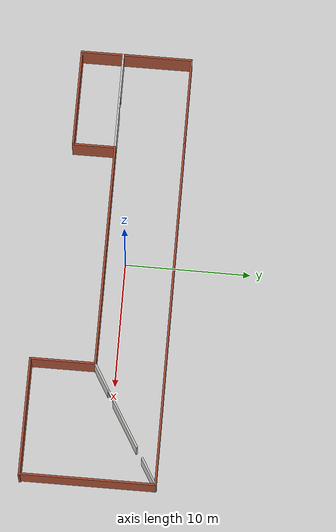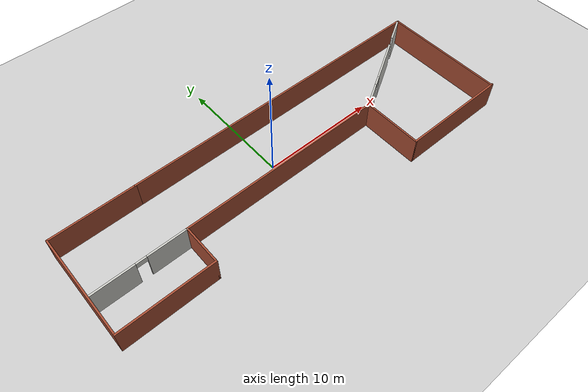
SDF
<sdf version="1.7">
 <world name="default">
  <light name="sun" type="directional">
   <pose>0 0 10 0 -0 0</pose>
   <diffuse>0.8 0.8 0.8 1</diffuse>
   <specular>0.2 0.2 0.2 1</specular>
   <attenuation>
    <range>1000</range>
    <constant>0.9</constant>
    <linear>0.01</linear>
    <quadratic>0.001</quadratic>
   </attenuation>
   <direction>-0.5 0.1 -0.9</direction>
   <spot><inner_angle>0</inner_angle><outer_angle>0</outer_angle><falloff>0</falloff></spot>
  </light>
  <model name="ground_plane">
   <static>1</static>
   <link name="link">
    <collision name="collision">
     <geometry><plane><normal>0 0 1</normal><size>100 100</size></plane></geometry>
     <surface>
      <contact><collide_bitmask>65535</collide_bitmask></contact>
      <friction><ode><mu>100</mu><mu2>50</mu2></ode></friction>
     </surface>
    </collision>
    <visual name="visual">
     <cast_shadows>0</cast_shadows>
     <geometry><plane><normal>0 0 1</normal><size>100 100</size></plane></geometry>
     <material>
      <script><uri>file://media/materials/scripts/gazebo.material</uri><name>Gazebo/Grey</name></script>
     </material>
    </visual>
   </link>
  </model>
  <gravity>0 0 -9.8</gravity>
  <magnetic_field>6e-06 2.3e-05 -4.2e-05</magnetic_field>
  <atmosphere type="adiabatic"/>
  <physics type="ode">
   <max_step_size>0.001</max_step_size>
   <real_time_factor>1</real_time_factor>
   <real_time_update_rate>1000</real_time_update_rate>
  </physics>
  <scene><ambient>0.4 0.4 0.4 1</ambient><background>0.7 0.7 0.7 1</background><shadows>1</shadows></scene>
  <spherical_coordinates>
   <surface_model>EARTH_WGS84</surface_model>
   <latitude_deg>0</latitude_deg>
   <longitude_deg>0</longitude_deg>
   <elevation>0</elevation>
   <heading_deg>0</heading_deg>
  </spherical_coordinates>
  <model name="house6">
   <pose>0.6647 -1.40096 0 0 -0 0</pose>
   <link name="Wall_0">
    <collision name="Wall_0_Collision">
     <geometry><box><size>7.25 0.15 2.5</size></box></geometry>
     <pose>0 0 1.25 0 -0 0</pose>
    </collision>
    <visual name="Wall_0_Visual">
     <pose>0 0 1.25 0 -0 0</pose>
     <geometry><box><size>7.25 0.15 2.5</size></box></geometry>
     <material>
      <script><uri>file://media/materials/scripts/gazebo.material</uri><name>Gazebo/Bricks</name></script>
      <ambient>1 1 1 1</ambient>
     </material>
     <meta><layer>0</layer></meta>
    </visual>
    <pose>-13.975 5.2861 0 0 -0 3.14159</pose>
   </link>
   <link name="Wall_1">
    <collision name="Wall_1_Collision">
     <geometry><box><size>9 0.15 2.5</size></box></geometry>
     <pose>0 0 1.25 0 -0 0</pose>
    </collision>
    <visual name="Wall_1_Visual">
     <pose>0 0 1.25 0 -0 0</pose>
     <geometry><box><size>9 0.15 2.5</size></box></geometry>
     <material>
      <script><uri>file://media/materials/scripts/gazebo.material</uri><name>Gazebo/Bricks</name></script>
      <ambient>1 1 1 1</ambient>
     </material>
     <meta><layer>0</layer></meta>
    </visual>
    <pose>-17.525 0.861102 0 0 -0 -1.5708</pose>
   </link>
   <link name="Wall_11">
    <collision name="Wall_11_Collision">
     <geometry><box><size>10.75 0.15 2.5</size></box></geometry>
     <pose>0 0 1.25 0 -0 0</pose>
    </collision>
    <visual name="Wall_11_Visual">
     <pose>0 0 1.25 0 -0 0</pose>
     <geometry><box><size>10.75 0.15 2.5</size></box></geometry>
     <material>
      <script><uri>file://media/materials/scripts/gazebo.material</uri><name>Gazebo/Bricks</name></script>
      <ambient>1 1 1 1</ambient>
     </material>
     <meta><layer>0</layer></meta>
    </visual>
    <pose>17.425 -0.013898 0 0 -0 -1.5708</pose>
   </link>
   <link name="Wall_13">
    <pose>12.8 2.5361 0 0 -0 0.536435</pose>
    <visual name="Wall_13_Visual_0">
     <pose>-4.22068 0 1.25 0 -0 0</pose>
     <geometry><box><size>2.47026 0.15 2.5</size></box></geometry>
     <material>
      <script><uri>file://media/materials/scripts/gazebo.material</uri><name>Gazebo/CeilingTiled</name></script>
      <ambient>1 1 1 1</ambient>
     </material>
     <meta><layer>0</layer></meta>
    </visual>
    <collision name="Wall_13_Collision_0">
     <geometry><box><size>2.47026 0.15 2.5</size></box></geometry>
     <pose>-4.22068 0 1.25 0 -0 0</pose>
    </collision>
    <visual name="Wall_13_Visual_1">
     <pose>0.014157 0 1.25 0 -0 0</pose>
     <geometry><box><size>4.19942 0.15 2.5</size></box></geometry>
     <material>
      <script><uri>file://media/materials/scripts/gazebo.material</uri><name>Gazebo/CeilingTiled</name></script>
      <ambient>1 1 1 1</ambient>
     </material>
     <meta><layer>0</layer></meta>
    </visual>
    <collision name="Wall_13_Collision_1">
     <geometry><box><size>4.19942 0.15 2.5</size></box></geometry>
     <pose>0.014157 0 1.25 0 -0 0</pose>
    </collision>
    <visual name="Wall_13_Visual_2">
     <pose>4.23484 0 1.25 0 -0 0</pose>
     <geometry><box><size>2.44195 0.15 2.5</size></box></geometry>
     <material>
      <script><uri>file://media/materials/scripts/gazebo.material</uri><name>Gazebo/CeilingTiled</name></script>
      <ambient>1 1 1 1</ambient>
     </material>
     <meta><layer>0</layer></meta>
    </visual>
    <collision name="Wall_13_Collision_2">
     <geometry><box><size>2.44195 0.15 2.5</size></box></geometry>
     <pose>4.23484 0 1.25 0 -0 0</pose>
    </collision>
    <visual name="Wall_13_Visual_3">
     <pose>-2.53555 0 2.25 0 -0 0</pose>
     <geometry><box><size>0.9 0.15 0.5</size></box></geometry>
     <material>
      <script><uri>file://media/materials/scripts/gazebo.material</uri><name>Gazebo/CeilingTiled</name></script>
      <ambient>1 1 1 1</ambient>
     </material>
     <meta><layer>0</layer></meta>
    </visual>
    <collision name="Wall_13_Collision_3">
     <geometry><box><size>0.9 0.15 0.5</size></box></geometry>
     <pose>-2.53555 0 2.25 0 -0 0</pose>
    </collision>
    <visual name="Wall_13_Visual_4">
     <pose>2.11387 0 2.25 0 -0 0</pose>
     <geometry><box><size>0 0.15 0.5</size></box></geometry>
     <material>
      <script><uri>file://media/materials/scripts/gazebo.material</uri><name>Gazebo/CeilingTiled</name></script>
      <ambient>1 1 1 1</ambient>
     </material>
     <meta><layer>0</layer></meta>
    </visual>
    <collision name="Wall_13_Collision_4">
     <geometry><box><size>0 0.15 0.5</size></box></geometry>
     <pose>2.11387 0 2.25 0 -0 0</pose>
    </collision>
   </link>
   <link name="Wall_15">
    <pose>-13.6 -0.213898 0 0 -0 3.14159</pose>
    <visual name="Wall_15_Visual_0">
     <pose>-2.29624 0 1.25 0 -0 0</pose>
     <geometry><box><size>3.40753 0.15 2.5</size></box></geometry>
     <material>
      <script><uri>file://media/materials/scripts/gazebo.material</uri><name>Gazebo/CeilingTiled</name></script>
      <ambient>1 1 1 1</ambient>
     </material>
     <meta><layer>0</layer></meta>
    </visual>
    <collision name="Wall_15_Collision_0">
     <geometry><box><size>3.40753 0.15 2.5</size></box></geometry>
     <pose>-2.29624 0 1.25 0 -0 0</pose>
    </collision>
    <visual name="Wall_15_Visual_1">
     <pose>2.15376 0 1.25 0 -0 0</pose>
     <geometry><box><size>3.69247 0.15 2.5</size></box></geometry>
     <material>
      <script><uri>file://media/materials/scripts/gazebo.material</uri><name>Gazebo/CeilingTiled</name></script>
      <ambient>1 1 1 1</ambient>
     </material>
     <meta><layer>0</layer></meta>
    </visual>
    <collision name="Wall_15_Collision_1">
     <geometry><box><size>3.69247 0.15 2.5</size></box></geometry>
     <pose>2.15376 0 1.25 0 -0 0</pose>
    </collision>
    <visual name="Wall_15_Visual_2">
     <pose>-0.142475 0 2.25 0 -0 0</pose>
     <geometry><box><size>0.9 0.15 0.5</size></box></geometry>
     <material>
      <script><uri>file://media/materials/scripts/gazebo.material</uri><name>Gazebo/CeilingTiled</name></script>
      <ambient>1 1 1 1</ambient>
     </material>
     <meta><layer>0</layer></meta>
    </visual>
    <collision name="Wall_15_Collision_2">
     <geometry><box><size>0.9 0.15 0.5</size></box></geometry>
     <pose>-0.142475 0 2.25 0 -0 0</pose>
    </collision>
   </link>
   <link name="Wall_2">
    <collision name="Wall_2_Collision">
     <geometry><box><size>8 0.15 2.5</size></box></geometry>
     <pose>0 0 1.25 0 -0 0</pose>
    </collision>
    <visual name="Wall_2_Visual">
     <pose>0 0 1.25 0 -0 0</pose>
     <geometry><box><size>8 0.15 2.5</size></box></geometry>
     <material>
      <script><uri>file://media/materials/scripts/gazebo.material</uri><name>Gazebo/Bricks</name></script>
      <ambient>1 1 1 1</ambient>
     </material>
     <meta><layer>0</layer></meta>
    </visual>
    <pose>-13.6 -3.5639 0 0 -0 0</pose>
   </link>
   <link name="Wall_3">
    <collision name="Wall_3_Collision">
     <geometry><box><size>3.5 0.15 2.5</size></box></geometry>
     <pose>0 0 1.25 0 -0 0</pose>
    </collision>
    <visual name="Wall_3_Visual">
     <pose>0 0 1.25 0 -0 0</pose>
     <geometry><box><size>3.5 0.15 2.5</size></box></geometry>
     <material>
      <script><uri>file://media/materials/scripts/gazebo.material</uri><name>Gazebo/Bricks</name></script>
      <ambient>1 1 1 1</ambient>
     </material>
     <meta><layer>0</layer></meta>
    </visual>
    <pose>-9.675 -1.8889 0 0 -0 1.5708</pose>
   </link>
   <link name="Wall_4">
    <collision name="Wall_4_Collision">
     <geometry><box><size>18 0.15 2.5</size></box></geometry>
     <pose>0 0 1.25 0 -0 0</pose>
    </collision>
    <visual name="Wall_4_Visual">
     <pose>0 0 1.25 0 -0 0</pose>
     <geometry><box><size>18 0.15 2.5</size></box></geometry>
     <material>
      <script><uri>file://media/materials/scripts/gazebo.material</uri><name>Gazebo/Bricks</name></script>
      <ambient>1 1 1 1</ambient>
     </material>
     <meta><layer>0</layer></meta>
    </visual>
    <pose>-0.75 -0.213898 0 0 -0 0</pose>
   </link>
   <link name="Wall_5">
    <collision name="Wall_5_Collision">
     <geometry><box><size>5.25 0.15 2.5</size></box></geometry>
     <pose>0 0 1.25 0 -0 0</pose>
    </collision>
    <visual name="Wall_5_Visual">
     <pose>0 0 1.25 0 -0 0</pose>
     <geometry><box><size>5.25 0.15 2.5</size></box></geometry>
     <material>
      <script><uri>file://media/materials/scripts/gazebo.material</uri><name>Gazebo/Bricks</name></script>
      <ambient>1 1 1 1</ambient>
     </material>
     <meta><layer>0</layer></meta>
    </visual>
    <pose>8.175 -2.7639 0 0 -0 -1.5708</pose>
   </link>
   <link name="Wall_6">
    <collision name="Wall_6_Collision">
     <geometry><box><size>9.5 0.15 2.5</size></box></geometry>
     <pose>0 0 1.25 0 -0 0</pose>
    </collision>
    <visual name="Wall_6_Visual">
     <pose>0 0 1.25 0 -0 0</pose>
     <geometry><box><size>9.5 0.15 2.5</size></box></geometry>
     <material>
      <script><uri>file://media/materials/scripts/gazebo.material</uri><name>Gazebo/Bricks</name></script>
      <ambient>1 1 1 1</ambient>
     </material>
     <meta><layer>0</layer></meta>
    </visual>
    <pose>12.85 -5.3139 0 0 -0 0</pose>
   </link>
   <link name="Wall_9">
    <collision name="Wall_9_Collision">
     <geometry><box><size>28 0.15 2.5</size></box></geometry>
     <pose>0 0 1.25 0 -0 0</pose>
    </collision>
    <visual name="Wall_9_Visual">
     <pose>0 0 1.25 0 -0 0</pose>
     <geometry><box><size>28 0.15 2.5</size></box></geometry>
     <material>
      <script><uri>file://media/materials/scripts/gazebo.material</uri><name>Gazebo/Bricks</name></script>
      <ambient>1 1 1 1</ambient>
     </material>
     <meta><layer>0</layer></meta>
    </visual>
    <pose>3.5 5.2861 0 0 -0 0</pose>
   </link>
   <static>1</static>
  </model>
 </world>
</sdf>
